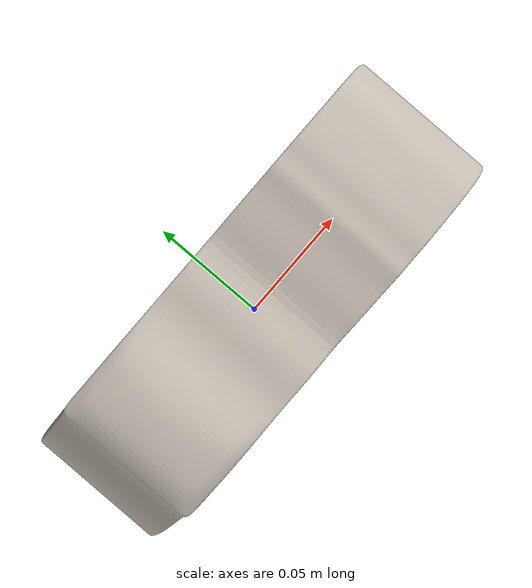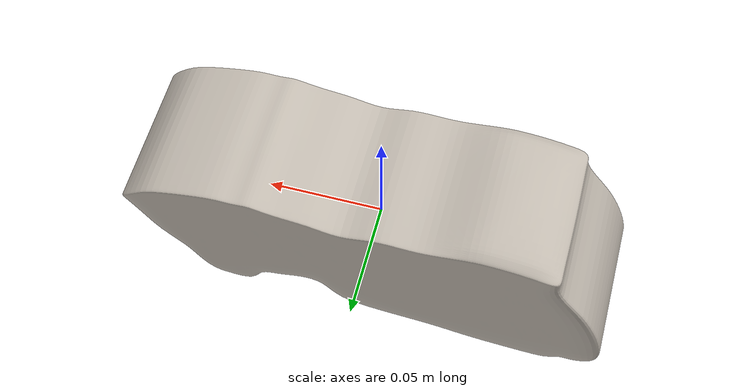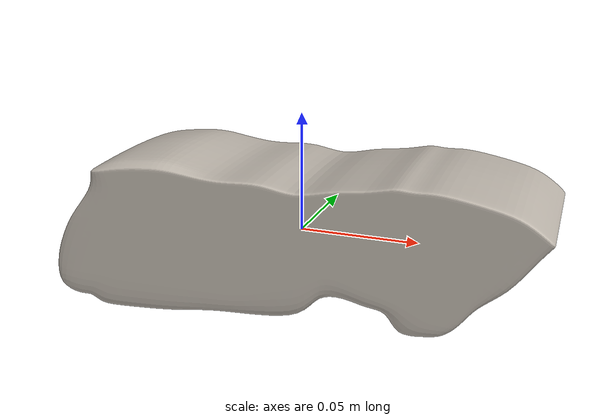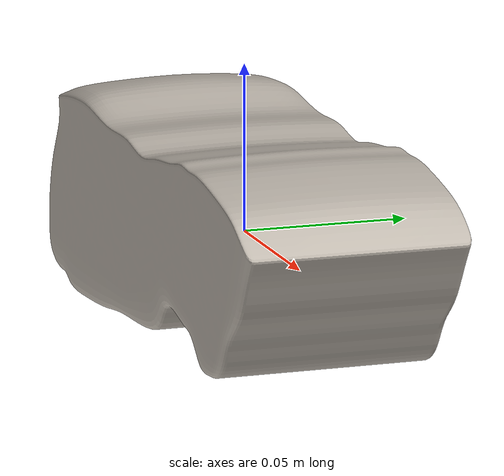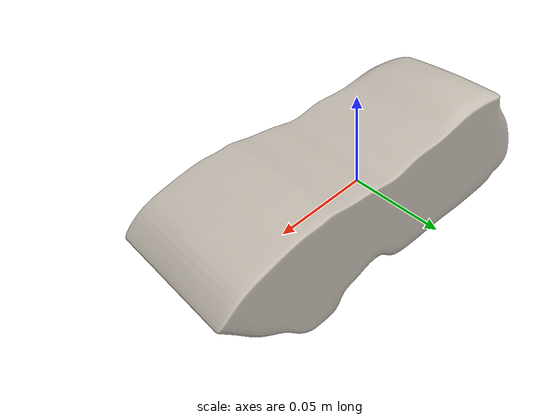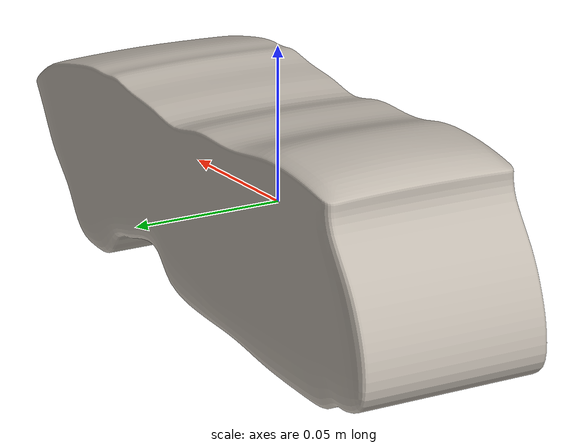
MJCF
<?xml version="1.0" ?>
<mujoco model="cold_cutting_3">
	<compiler meshdir="cold_cutting_3/meshes" texturedir="cold_cutting_3/textures" angle="radian" autolimits="true" balanceinertia="true" boundmass="0.000001" boundinertia="0.000001"/>
	<default>
		<default class="visual">
			<geom contype="0" conaffinity="0"/>
		</default>
		<default class="collision">
			<geom rgba="1.0 0.0 0.0 0.0"/>
		</default>
	</default>
	<asset>
		<mesh name="ColdCutting3" file="obj/ColdCutting3.obj" scale="1.0 1.0 1.0"/>
		<mesh name="ColdCutting3_001" file="stl/ColdCutting3_001.stl" scale="1.0 1.0 1.0"/>
		<mesh name="ColdCutting3_002" file="stl/ColdCutting3_002.stl" scale="1.0 1.0 1.0"/>
		<material name="M_ColdCutting3" texture="T_ColdCutting3"/>
		<texture name="T_ColdCutting3" type="2d" file="T_ColdCutting3.png"/>
	</asset>
	<worldbody>
		<body name="cold_cutting_3" pos="0.0 0.0 0.0" quat="1.0 0.0 0.0 0.0">
			<inertial mass="0.6953639984130859" pos="-0.006212994456291199 0.0002467286540195346 0.0018410570919513702" quat="0.0924251526594162 0.9946800470352173 -0.007563811726868153 0.04485451430082321" diaginertia="0.00043925424688495696 0.002285430207848549 0.002342988969758153"/>
			<geom name="ColdCutting3" type="mesh" pos="0.0 0.0 0.0" quat="1.0 0.0 0.0 0.0" mesh="ColdCutting3" material="M_ColdCutting3" class="visual"/>
			<geom name="ColdCutting3_001" type="mesh" pos="0.0 0.0 0.0" quat="1.0 0.0 0.0 0.0" mesh="ColdCutting3_001" class="collision"/>
			<geom name="ColdCutting3_002" type="mesh" pos="0.0 0.0 0.0" quat="1.0 0.0 0.0 0.0" mesh="ColdCutting3_002" class="collision"/>
		</body>
	</worldbody>
	<equality/>
</mujoco>
